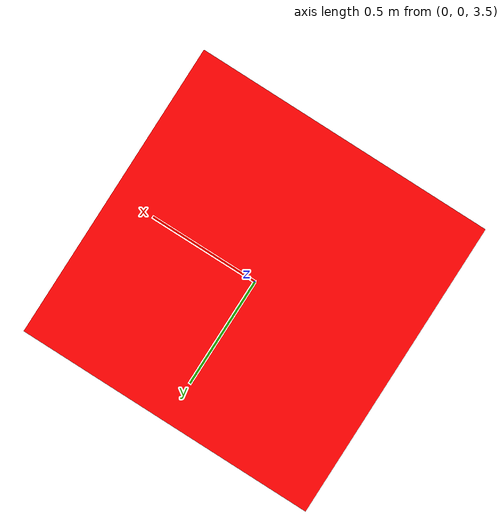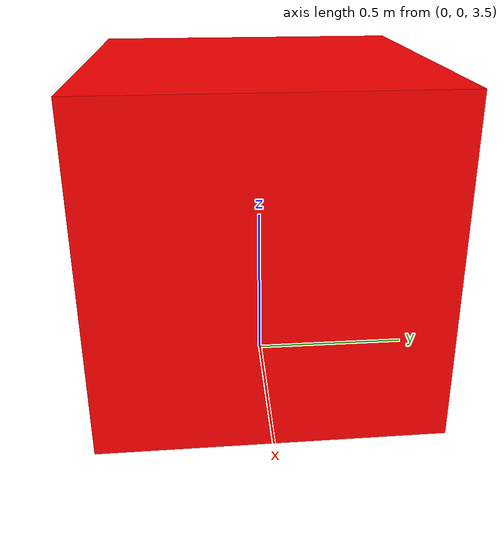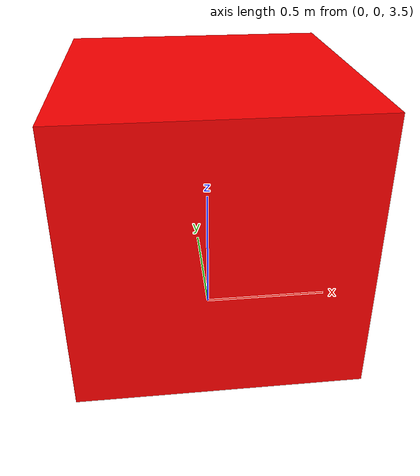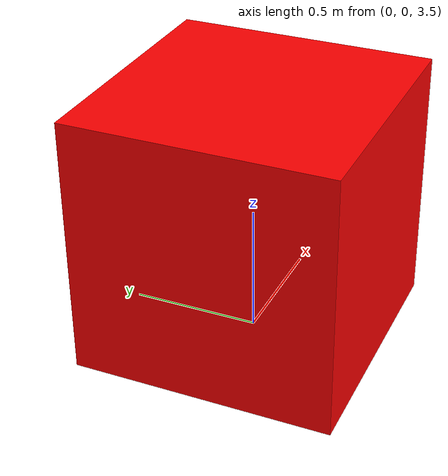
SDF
<?xml version="1.0" ?>
<sdf version="1.7">
  <world name="test_world">

    <!-- Raum als statisches SDF-Modell -->

    <!-- Ground Plane -->
    <include>
      <uri>model://ground_plane</uri>
    </include>

    <!-- Test-Box in der Mitte -->
    <model name="test_box">
      <pose>0 0 4 0 0 0</pose>
      <static>true</static>
      <link name="link">
        <visual name="visual">
          <geometry>
            <box><size>1 1 1</size></box>
          </geometry>
          <material>
            <ambient>1 0 0 1</ambient>
          </material>
        </visual>
      </link>
    </model>

    <!-- Standardplugins etc. -->
    <plugin name="gazebo_ros_init" filename="libgazebo_ros_init.so">
      <ros>
        <namespace>/</namespace>
      </ros>
    </plugin>

    <plugin name="gazebo_ros_factory" filename="libgazebo_ros_factory.so"/>
    <plugin name="gazebo_ros_clock" filename="libgazebo_ros_clock.so"/>
  </world>
</sdf>
